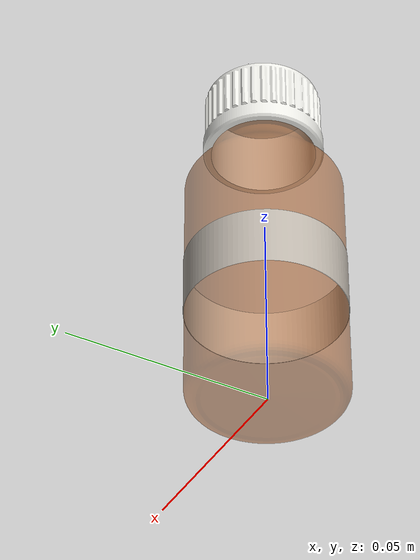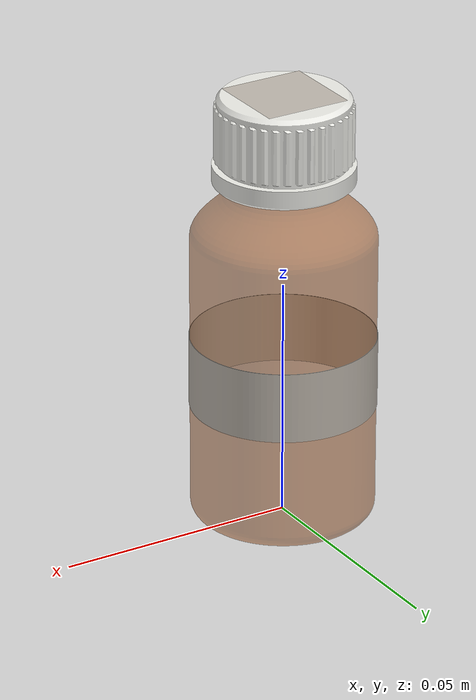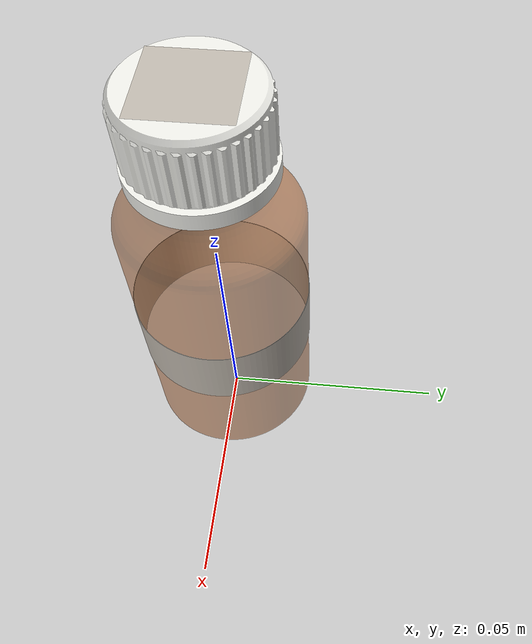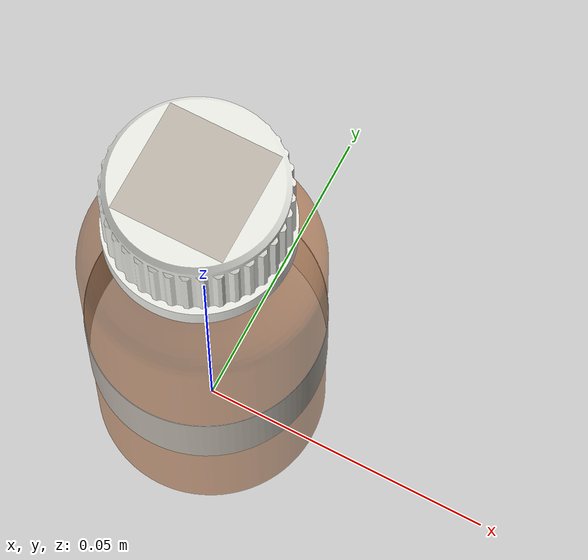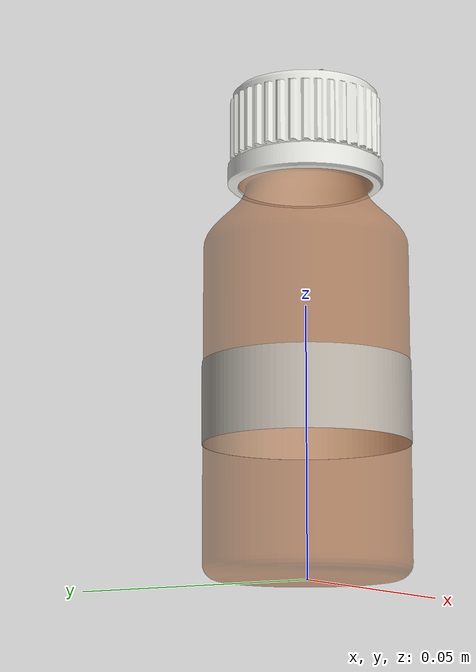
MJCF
<!-- Generated by tools/build_labelled_bottles.py. Ethyl acetoacetate (liquid),
     50 ml, marker 193, barcode 2008388397888.
     Origin bottom-centre, +Z up, the label's front facing -Y. -->
<mujoco model="SMP-0194">
  <asset>
    <mesh name="flask_50ml_glass" file="meshes/flask_50ml_glass.obj" inertia="exact"/>
    <mesh name="flask_50ml_cap" file="meshes/flask_50ml_cap.obj" inertia="exact"/>
    <mesh name="flask_50ml_label" file="meshes/flask_50ml_label.obj" inertia="shell"/>
    <mesh name="flask_50ml_label_back" file="meshes/flask_50ml_label_back.obj" inertia="shell"/>
    <mesh name="flask_50ml_cap_label" file="meshes/flask_50ml_cap_label.obj" inertia="shell"/>
    <texture name="label" type="2d" file="textures/SMP-0194.png"/>
    <material name="label" texture="label" specular="0.05" shininess="0.1"/>
    <texture name="cap_label" type="2d" file="textures/SMP-0194_cap.png"/>
    <material name="cap_label" texture="cap_label" specular="0.05" shininess="0.1"/>
  </asset>
  <worldbody>
    <body name="SMP-0194">
      <geom name="glass" type="mesh" mesh="flask_50ml_glass" rgba="0.620 0.280 0.050 0.500" density="2500"/>
      <geom name="cap" type="mesh" mesh="flask_50ml_cap" rgba="0.930 0.930 0.910 1.000" density="900"/>
      <geom name="label" type="mesh" mesh="flask_50ml_label" material="label" contype="0" conaffinity="0" mass="0"/>
      <geom name="label_back" type="mesh" mesh="flask_50ml_label_back" rgba="0.950 0.950 0.930 1" contype="0" conaffinity="0" mass="0"/>
      <geom name="cap_label" type="mesh" mesh="flask_50ml_cap_label" material="cap_label" contype="0" conaffinity="0" mass="0"/>
    </body>
  </worldbody>
</mujoco>
